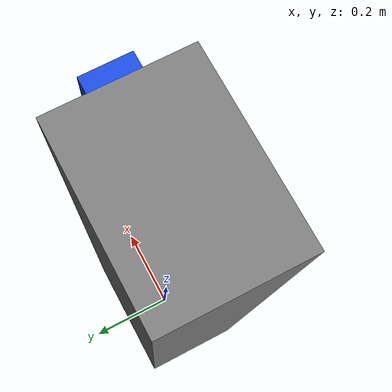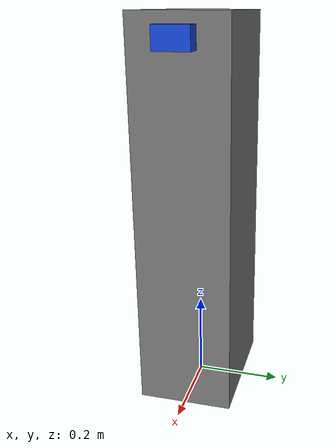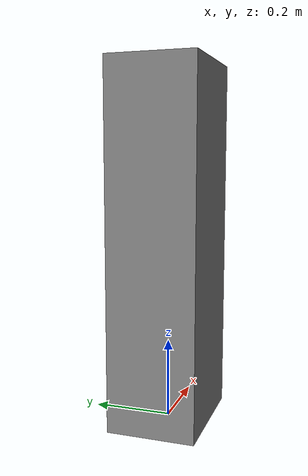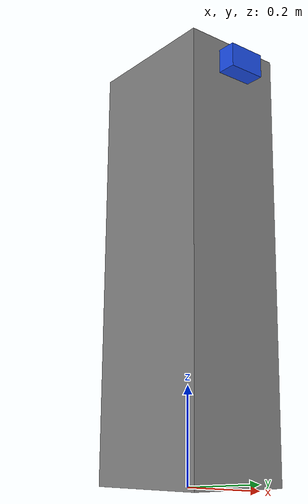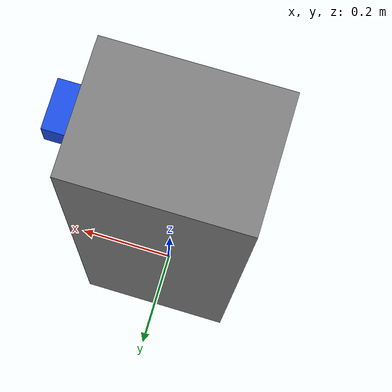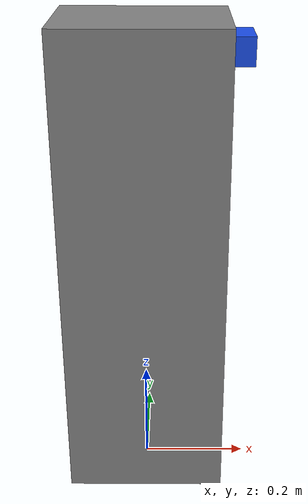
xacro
<?xml version="1.0"?>
<robot xmlns:xacro="http://www.ros.org/wiki/xacro" name="g1_minimal_livox">

  <!-- Minimal fallback model so the stack can run even before you add the full G1 URDF. -->
  <xacro:arg name="base_z" default="0.0"/>
  <xacro:arg name="lidar_x" default="0.15"/>
  <xacro:arg name="lidar_y" default="0.00"/>
  <xacro:arg name="lidar_z" default="0.85"/>
  <xacro:arg name="lidar_roll" default="0.0"/>
  <xacro:arg name="lidar_pitch" default="0.0"/>
  <xacro:arg name="lidar_yaw" default="0.0"/>

  <link name="base_footprint"/>

  <link name="base_link">
    <visual>
      <origin xyz="0 0 0.45" rpy="0 0 0"/>
      <geometry>
        <box size="0.30 0.22 0.90"/>
      </geometry>
      <material name="gray">
        <color rgba="0.5 0.5 0.5 1.0"/>
      </material>
    </visual>
    <collision>
      <origin xyz="0 0 0.45" rpy="0 0 0"/>
      <geometry>
        <box size="0.30 0.22 0.90"/>
      </geometry>
    </collision>
    <inertial>
      <origin xyz="0 0 0.45" rpy="0 0 0"/>
      <mass value="35.0"/>
      <inertia ixx="2.0" ixy="0.0" ixz="0.0" iyy="2.0" iyz="0.0" izz="1.0"/>
    </inertial>
  </link>

  <joint name="base_footprint_to_base_link" type="fixed">
    <parent link="base_footprint"/>
    <child link="base_link"/>
    <origin xyz="0 0 $(arg base_z)" rpy="0 0 0"/>
  </joint>

  <link name="livox_frame">
    <visual>
      <geometry>
        <box size="0.08 0.08 0.05"/>
      </geometry>
      <material name="blue">
        <color rgba="0.1 0.3 0.9 1.0"/>
      </material>
    </visual>
    <collision>
      <geometry>
        <box size="0.08 0.08 0.05"/>
      </geometry>
    </collision>
    <inertial>
      <mass value="0.3"/>
      <inertia ixx="0.001" ixy="0.0" ixz="0.0" iyy="0.001" iyz="0.0" izz="0.001"/>
    </inertial>
  </link>

  <joint name="base_link_to_livox_frame" type="fixed">
    <parent link="base_link"/>
    <child link="livox_frame"/>
    <origin xyz="$(arg lidar_x) $(arg lidar_y) $(arg lidar_z)"
            rpy="$(arg lidar_roll) $(arg lidar_pitch) $(arg lidar_yaw)"/>
  </joint>

</robot>
